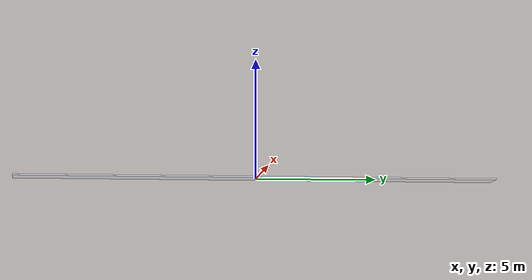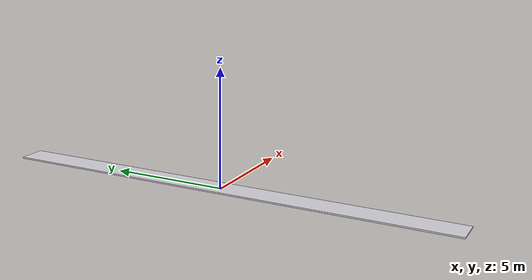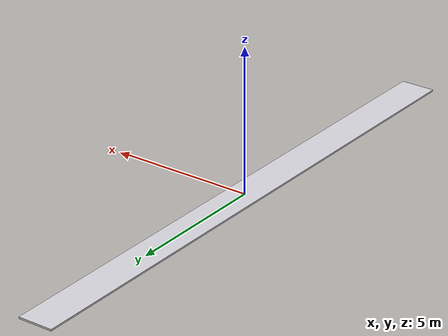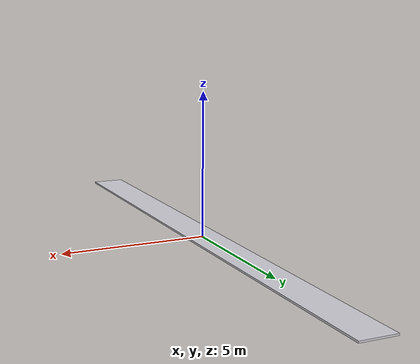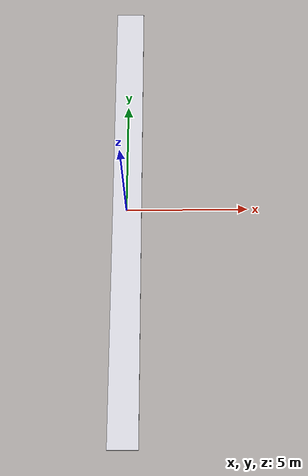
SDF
<?xml version="1.0"?>
<sdf version="1.10">
  <model name="walkway">
    <static>true</static>
    <link name="link">
      <visual name="path">
        <pose>0 0 0.03 0 0 0</pose>
        <geometry>
          <box>
            <size>1.2 20 0.06</size>
          </box>
        </geometry>
        <material>
          <ambient>0.7 0.7 0.72 1</ambient>
          <diffuse>0.82 0.82 0.85 1</diffuse>
        </material>
      </visual>
    </link>
  </model>
</sdf>
